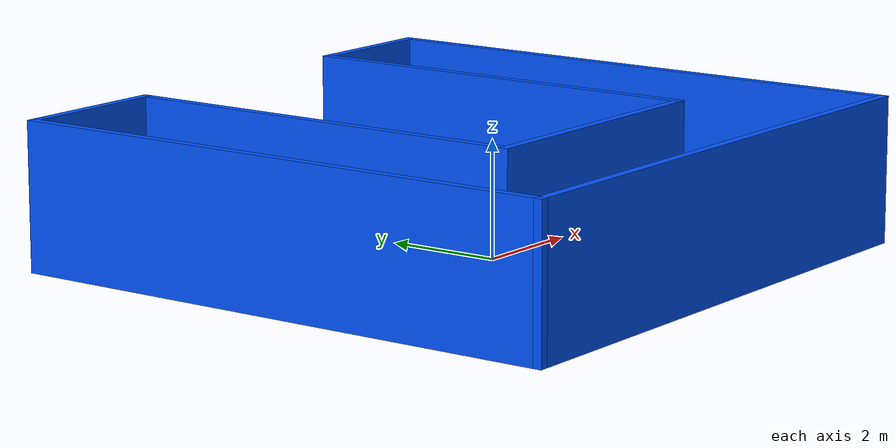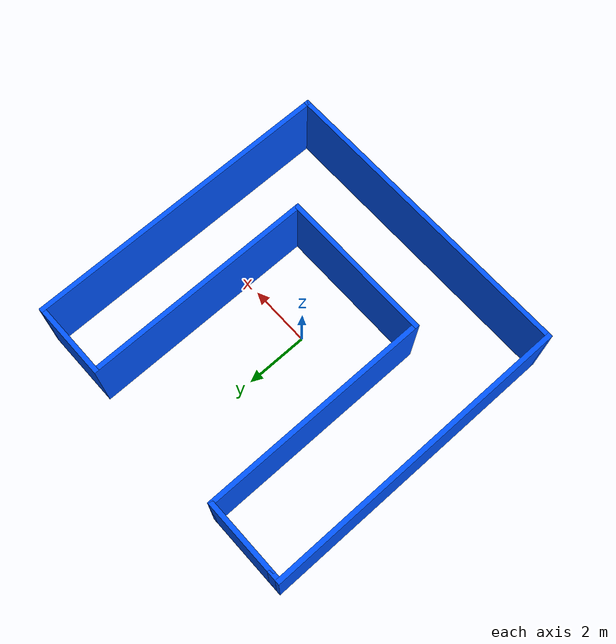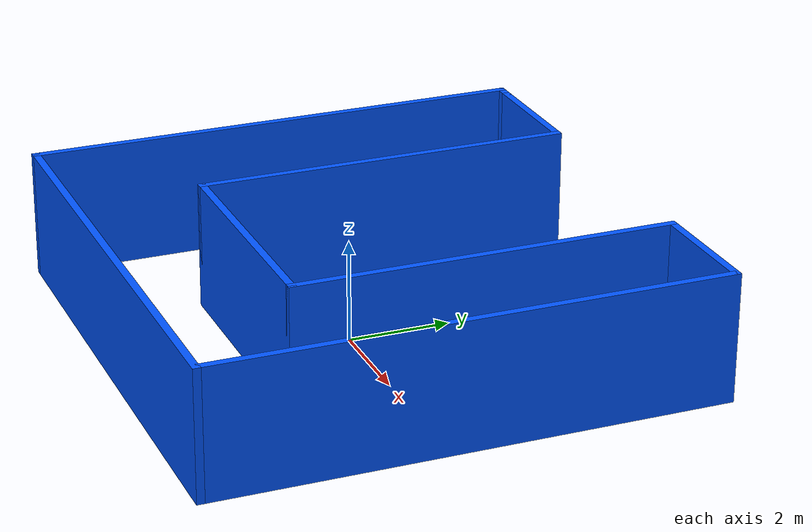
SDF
<?xml version='1.0'?>
<sdf version='1.7'>
  <model name='building'>
    <pose>-0.147377 0.419378 0 0 -0 0</pose>
    <link name='Wall_16'>
      <collision name='Wall_16_Collision'>
        <geometry>
          <box>
            <size>2.5 0.15 2.5</size>
          </box>
        </geometry>
        <pose>0 0 1.25 0 -0 0</pose>
      </collision>
      <visual name='Wall_16_Visual'>
        <pose>0 0 1.25 0 -0 0</pose>
        <geometry>
          <box>
            <size>2.5 0.15 2.5</size>
          </box>
        </geometry>
        <material>
          <script>
            <uri>file://media/materials/scripts/gazebo.material</uri>
            <name>Gazebo/Grey</name>
          </script>
          <ambient>0 0.333333 1 1</ambient>
        </material>
        <meta>
          <layer>0</layer>
        </meta>
      </visual>
      <pose>-3.45 4.925 0 0 -0 0</pose>
    </link>
    <link name='Wall_23'>
      <collision name='Wall_23_Collision'>
        <geometry>
          <box>
            <size>7.5 0.15 2.5</size>
          </box>
        </geometry>
        <pose>0 0 1.25 0 -0 0</pose>
      </collision>
      <visual name='Wall_23_Visual'>
        <pose>0 0 1.25 0 -0 0</pose>
        <geometry>
          <box>
            <size>7.5 0.15 2.5</size>
          </box>
        </geometry>
        <material>
          <script>
            <uri>file://media/materials/scripts/gazebo.material</uri>
            <name>Gazebo/Grey</name>
          </script>
          <ambient>0 0.333333 1 1</ambient>
        </material>
        <meta>
          <layer>0</layer>
        </meta>
      </visual>
      <pose>-2.275 1.25 0 0 -0 -1.5708</pose>
    </link>
    <link name='Wall_24'>
      <collision name='Wall_24_Collision'>
        <geometry>
          <box>
            <size>5 0.15 2.5</size>
          </box>
        </geometry>
        <pose>0 0 1.25 0 -0 0</pose>
      </collision>
      <visual name='Wall_24_Visual'>
        <pose>0 0 1.25 0 -0 0</pose>
        <geometry>
          <box>
            <size>5 0.15 2.5</size>
          </box>
        </geometry>
        <material>
          <script>
            <uri>file://media/materials/scripts/gazebo.material</uri>
            <name>Gazebo/Grey</name>
          </script>
          <ambient>0 0.333333 1 1</ambient>
        </material>
        <meta>
          <layer>0</layer>
        </meta>
      </visual>
      <pose>0.15 -2.425 0 0 -0 0</pose>
    </link>
    <link name='Wall_25'>
      <collision name='Wall_25_Collision'>
        <geometry>
          <box>
            <size>7.5 0.15 2.5</size>
          </box>
        </geometry>
        <pose>0 0 1.25 0 -0 0</pose>
      </collision>
      <visual name='Wall_25_Visual'>
        <pose>0 0 1.25 0 -0 0</pose>
        <geometry>
          <box>
            <size>7.5 0.15 2.5</size>
          </box>
        </geometry>
        <material>
          <script>
            <uri>file://media/materials/scripts/gazebo.material</uri>
            <name>Gazebo/Grey</name>
          </script>
          <ambient>0 0.333333 1 1</ambient>
        </material>
        <meta>
          <layer>0</layer>
        </meta>
      </visual>
      <pose>2.575 1.25 0 0 -0 1.5708</pose>
    </link>
    <link name='Wall_26'>
      <collision name='Wall_26_Collision'>
        <geometry>
          <box>
            <size>2.5 0.15 2.5</size>
          </box>
        </geometry>
        <pose>0 0 1.25 0 -0 0</pose>
      </collision>
      <visual name='Wall_26_Visual'>
        <pose>0 0 1.25 0 -0 0</pose>
        <geometry>
          <box>
            <size>2.5 0.15 2.5</size>
          </box>
        </geometry>
        <material>
          <script>
            <uri>file://media/materials/scripts/gazebo.material</uri>
            <name>Gazebo/Grey</name>
          </script>
          <ambient>0 0.333333 1 1</ambient>
        </material>
        <meta>
          <layer>0</layer>
        </meta>
      </visual>
      <pose>3.75 4.925 0 0 -0 0</pose>
    </link>
    <link name='Wall_28'>
      <collision name='Wall_28_Collision'>
        <geometry>
          <box>
            <size>10 0.15 2.5</size>
          </box>
        </geometry>
        <pose>0 0 1.25 0 -0 0</pose>
      </collision>
      <visual name='Wall_28_Visual'>
        <pose>0 0 1.25 0 -0 0</pose>
        <geometry>
          <box>
            <size>10 0.15 2.5</size>
          </box>
        </geometry>
        <material>
          <script>
            <uri>file://media/materials/scripts/gazebo.material</uri>
            <name>Gazebo/Grey</name>
          </script>
          <ambient>0 0.333333 1 1</ambient>
        </material>
        <meta>
          <layer>0</layer>
        </meta>
      </visual>
      <pose>4.925 0 0 0 -0 -1.5708</pose>
    </link>
    <link name='Wall_29'>
      <collision name='Wall_29_Collision'>
        <geometry>
          <box>
            <size>10 0.15 2.5</size>
          </box>
        </geometry>
        <pose>0 0 1.25 0 -0 0</pose>
      </collision>
      <visual name='Wall_29_Visual'>
        <pose>0 0 1.25 0 -0 0</pose>
        <geometry>
          <box>
            <size>10 0.15 2.5</size>
          </box>
        </geometry>
        <material>
          <script>
            <uri>file://media/materials/scripts/gazebo.material</uri>
            <name>Gazebo/Grey</name>
          </script>
          <ambient>0 0.333333 1 1</ambient>
        </material>
        <meta>
          <layer>0</layer>
        </meta>
      </visual>
      <pose>-0 -4.925 0 0 -0 3.14159</pose>
    </link>
    <link name='Wall_30'>
      <collision name='Wall_30_Collision'>
        <geometry>
          <box>
            <size>10 0.15 2.5</size>
          </box>
        </geometry>
        <pose>0 0 1.25 0 -0 0</pose>
      </collision>
      <visual name='Wall_30_Visual'>
        <pose>0 0 1.25 0 -0 0</pose>
        <geometry>
          <box>
            <size>10 0.15 2.5</size>
          </box>
        </geometry>
        <material>
          <script>
            <uri>file://media/materials/scripts/gazebo.material</uri>
            <name>Gazebo/Grey</name>
          </script>
          <ambient>0 0.333333 1 1</ambient>
        </material>
        <meta>
          <layer>0</layer>
        </meta>
      </visual>
      <pose>-4.925 0 0 0 -0 1.5708</pose>
    </link>
    <link name='Wall_31'>
      <collision name='Wall_31_Collision'>
        <geometry>
          <box>
            <size>0.45 0.15 2.5</size>
          </box>
        </geometry>
        <pose>0 0 1.25 0 -0 0</pose>
      </collision>
      <visual name='Wall_31_Visual'>
        <pose>0 0 1.25 0 -0 0</pose>
        <geometry>
          <box>
            <size>0.45 0.15 2.5</size>
          </box>
        </geometry>
        <material>
          <script>
            <uri>file://media/materials/scripts/gazebo.material</uri>
            <name>Gazebo/Grey</name>
          </script>
          <ambient>0 0.333333 1 1</ambient>
        </material>
        <meta>
          <layer>0</layer>
        </meta>
      </visual>
      <pose>-4.775 4.925 0 0 -0 0</pose>
    </link>
    <static>1</static>
  </model>
</sdf>
